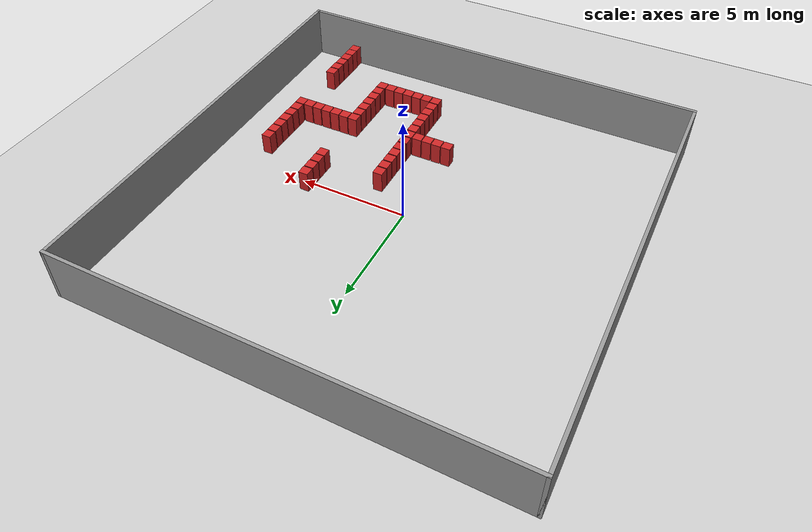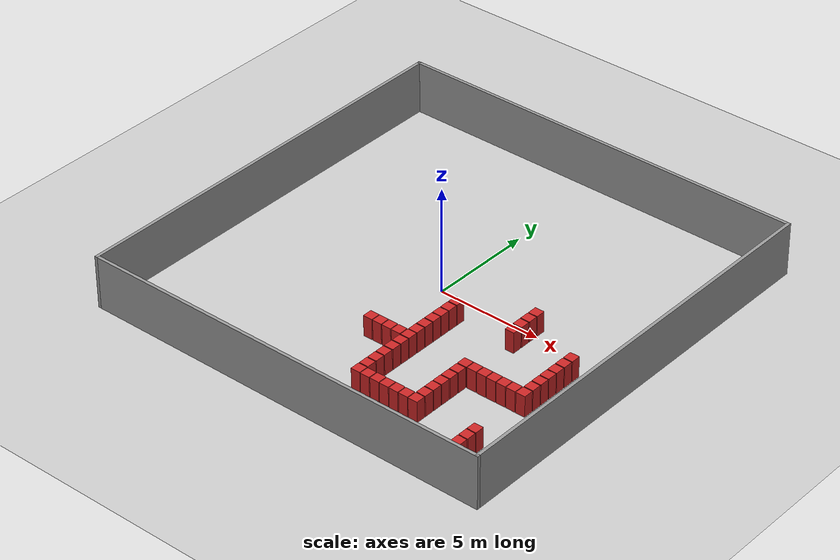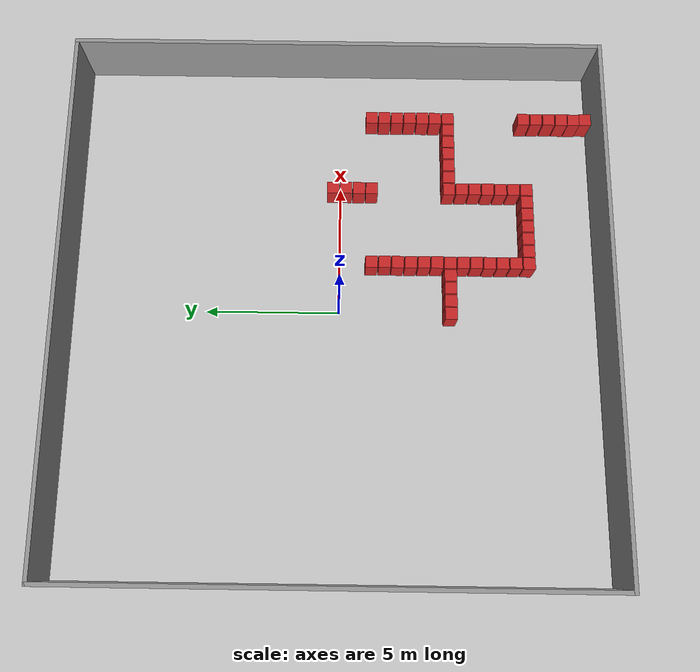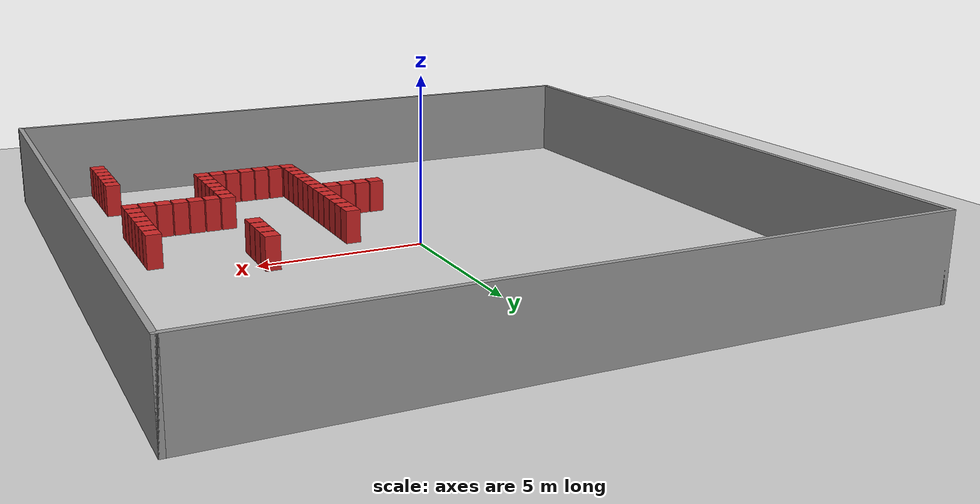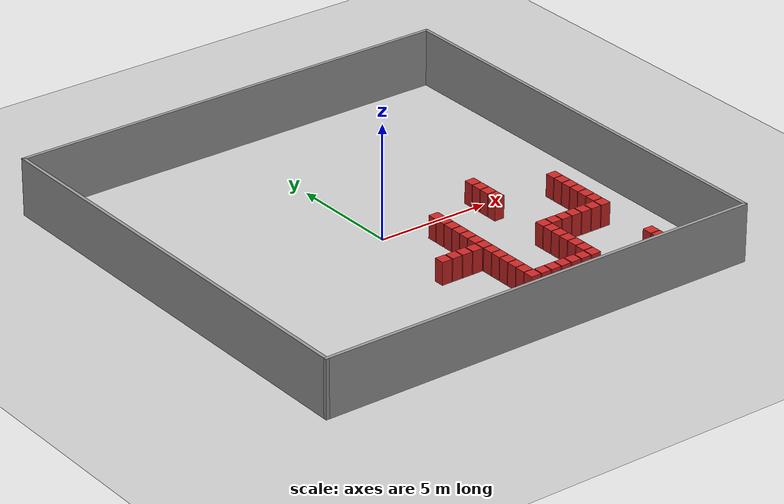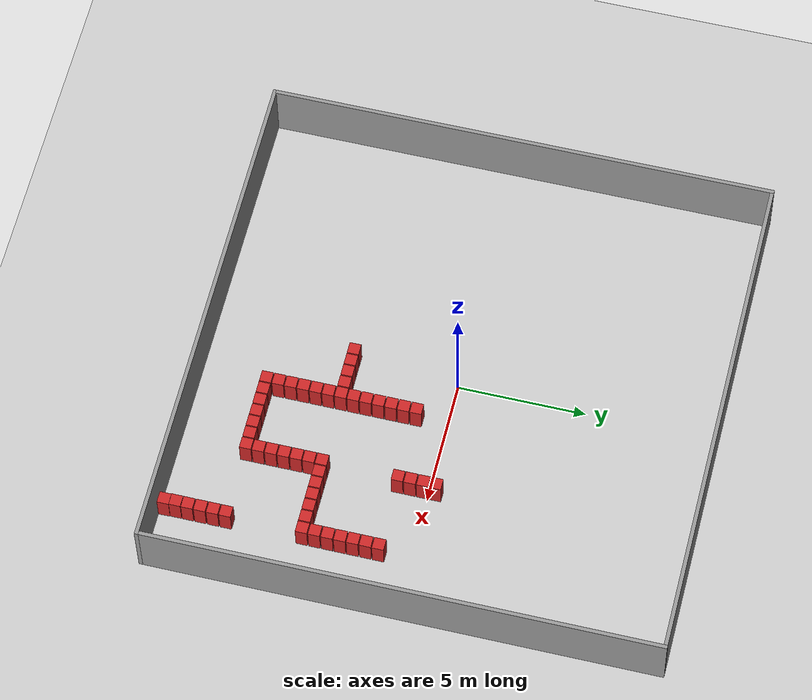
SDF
<sdf version="1.6">
 <world name="default">
  <model name="ground_plane">
   <static>1</static>
   <link name="link">
    <collision name="collision">
     <geometry><plane><normal>0 0 1</normal><size>100 100</size></plane></geometry>
     <surface><friction><ode><mu>100</mu><mu2>50</mu2></ode></friction></surface>
    </collision>
    <visual name="visual">
     <cast_shadows>0</cast_shadows>
     <geometry><plane><normal>0 0 1</normal><size>100 100</size></plane></geometry>
     <material>
      <script><uri>file://media/materials/scripts/gazebo.material</uri><name>Gazebo/Grey</name></script>
     </material>
    </visual>
   </link>
  </model>
  <model name="NamedLocations"><static>1</static><link name="DefaultStart"/></model>
  <model name="20x20_walls">
   <pose>0.044518 0.1761 0 0 -0 0</pose>
   <link name="Wall_1">
    <collision name="Wall_1_Collision">
     <geometry><box><size>20 0.15 2.5</size></box></geometry>
     <pose>0 0 1.25 0 -0 0</pose>
    </collision>
    <visual name="Wall_1_Visual">
     <pose>0 0 1.25 0 -0 0</pose>
     <geometry><box><size>20 0.15 2.5</size></box></geometry>
     <material>
      <script><uri>file://media/materials/scripts/gazebo.material</uri><name>Gazebo/Grey</name></script>
      <ambient>0.976471 0.992157 1 1</ambient>
     </material>
     <meta><layer>0</layer></meta>
    </visual>
    <pose>0 9.925 0 0 -0 0</pose>
   </link>
   <link name="Wall_3">
    <collision name="Wall_3_Collision">
     <geometry><box><size>20 0.15 2.5</size></box></geometry>
     <pose>0 0 1.25 0 -0 0</pose>
    </collision>
    <visual name="Wall_3_Visual">
     <pose>0 0 1.25 0 -0 0</pose>
     <geometry><box><size>20 0.15 2.5</size></box></geometry>
     <material>
      <script><uri>file://media/materials/scripts/gazebo.material</uri><name>Gazebo/Grey</name></script>
      <ambient>0.976471 0.992157 1 1</ambient>
     </material>
     <meta><layer>0</layer></meta>
    </visual>
    <pose>9.925 0 0 0 0 -1.5708</pose>
   </link>
   <link name="Wall_4">
    <collision name="Wall_4_Collision">
     <geometry><box><size>20 0.15 2.5</size></box></geometry>
     <pose>0 0 1.25 0 -0 0</pose>
    </collision>
    <visual name="Wall_4_Visual">
     <pose>0 0 1.25 0 -0 0</pose>
     <geometry><box><size>20 0.15 2.5</size></box></geometry>
     <material>
      <script><uri>file://media/materials/scripts/gazebo.material</uri><name>Gazebo/Grey</name></script>
      <ambient>0.976471 0.992157 1 1</ambient>
     </material>
     <meta><layer>0</layer></meta>
    </visual>
    <pose>0 -9.925 0 0 -0 3.14159</pose>
   </link>
   <link name="Wall_5">
    <collision name="Wall_5_Collision">
     <geometry><box><size>20 0.15 2.5</size></box></geometry>
     <pose>0 0 1.25 0 -0 0</pose>
    </collision>
    <visual name="Wall_5_Visual">
     <pose>0 0 1.25 0 -0 0</pose>
     <geometry><box><size>20 0.15 2.5</size></box></geometry>
     <material>
      <script><uri>file://media/materials/scripts/gazebo.material</uri><name>Gazebo/Grey</name></script>
      <ambient>0.976471 0.992157 1 1</ambient>
     </material>
     <meta><layer>0</layer></meta>
    </visual>
    <pose>-9.925 0 0 0 -0 1.5708</pose>
   </link>
   <static>1</static>
  </model>
  <model name="box_obstacle109">
   <static>0</static>
   <link name="box_obstacle109">
    <pose>0 0 0.1 0 -0 0</pose>
    <inertial>
     <mass>100</mass>
     <inertia>
      <ixx>0.166667</ixx>
      <ixy>0</ixy>
      <ixz>0</ixz>
      <iyy>0.166667</iyy>
      <iyz>0</iyz>
      <izz>0.166667</izz>
     </inertia>
    </inertial>
    <collision name="collision"><geometry><box><size>0.45 0.45 1</size></box></geometry></collision>
    <visual name="visual">
     <geometry><box><size>0.45 0.45 1</size></box></geometry>
     <material>
      <script><name>Gazebo/Red</name><uri>file://media/materials/scripts/gazebo.material</uri></script>
     </material>
    </visual>
   </link>
   <pose>-0.200508 -4.12124 0.4 0 5e-06 0.002247</pose>
  </model>
  <model name="box_obstacle111">
   <static>0</static>
   <link name="box_obstacle111">
    <pose>0 0 0.1 0 -0 0</pose>
    <inertial>
     <mass>100</mass>
     <inertia>
      <ixx>0.166667</ixx>
      <ixy>0</ixy>
      <ixz>0</ixz>
      <iyy>0.166667</iyy>
      <iyz>0</iyz>
      <izz>0.166667</izz>
     </inertia>
    </inertial>
    <collision name="collision"><geometry><box><size>0.45 0.45 1</size></box></geometry></collision>
    <visual name="visual">
     <geometry><box><size>0.45 0.45 1</size></box></geometry>
     <material>
      <script><name>Gazebo/Red</name><uri>file://media/materials/scripts/gazebo.material</uri></script>
     </material>
    </visual>
   </link>
   <pose>0.289492 -4.12124 0.4 0 5e-06 0.002247</pose>
  </model>
  <model name="box_obstacle113">
   <static>0</static>
   <link name="box_obstacle113">
    <pose>0 0 0.1 0 -0 0</pose>
    <inertial>
     <mass>100</mass>
     <inertia>
      <ixx>0.166667</ixx>
      <ixy>0</ixy>
      <ixz>0</ixz>
      <iyy>0.166667</iyy>
      <iyz>0</iyz>
      <izz>0.166667</izz>
     </inertia>
    </inertial>
    <collision name="collision"><geometry><box><size>0.45 0.45 1</size></box></geometry></collision>
    <visual name="visual">
     <geometry><box><size>0.45 0.45 1</size></box></geometry>
     <material>
      <script><name>Gazebo/Red</name><uri>file://media/materials/scripts/gazebo.material</uri></script>
     </material>
    </visual>
   </link>
   <pose>0.779492 -4.12124 0.4 0 5e-06 0.002247</pose>
  </model>
  <model name="box_obstacle115">
   <static>0</static>
   <link name="box_obstacle115">
    <pose>0 0 0.1 0 -0 0</pose>
    <inertial>
     <mass>100</mass>
     <inertia>
      <ixx>0.166667</ixx>
      <ixy>0</ixy>
      <ixz>0</ixz>
      <iyy>0.166667</iyy>
      <iyz>0</iyz>
      <izz>0.166667</izz>
     </inertia>
    </inertial>
    <collision name="collision"><geometry><box><size>0.45 0.45 1</size></box></geometry></collision>
    <visual name="visual">
     <geometry><box><size>0.45 0.45 1</size></box></geometry>
     <material>
      <script><name>Gazebo/Red</name><uri>file://media/materials/scripts/gazebo.material</uri></script>
     </material>
    </visual>
   </link>
   <pose>1.26949 -4.12124 0.4 0 5e-06 0.002247</pose>
  </model>
  <model name="box_obstacle117">
   <static>0</static>
   <link name="box_obstacle117">
    <pose>0 0 0.1 0 -0 0</pose>
    <inertial>
     <mass>100</mass>
     <inertia>
      <ixx>0.166667</ixx>
      <ixy>0</ixy>
      <ixz>0</ixz>
      <iyy>0.166667</iyy>
      <iyz>0</iyz>
      <izz>0.166667</izz>
     </inertia>
    </inertial>
    <collision name="collision"><geometry><box><size>0.45 0.45 1</size></box></geometry></collision>
    <visual name="visual">
     <geometry><box><size>0.45 0.45 1</size></box></geometry>
     <material>
      <script><name>Gazebo/Red</name><uri>file://media/materials/scripts/gazebo.material</uri></script>
     </material>
    </visual>
   </link>
   <pose>1.75949 -7.06124 0.4 0 5e-06 0.002247</pose>
  </model>
  <model name="box_obstacle118">
   <static>0</static>
   <link name="box_obstacle118">
    <pose>0 0 0.1 0 -0 0</pose>
    <inertial>
     <mass>100</mass>
     <inertia>
      <ixx>0.166667</ixx>
      <ixy>0</ixy>
      <ixz>0</ixz>
      <iyy>0.166667</iyy>
      <iyz>0</iyz>
      <izz>0.166667</izz>
     </inertia>
    </inertial>
    <collision name="collision"><geometry><box><size>0.45 0.45 1</size></box></geometry></collision>
    <visual name="visual">
     <geometry><box><size>0.45 0.45 1</size></box></geometry>
     <material>
      <script><name>Gazebo/Red</name><uri>file://media/materials/scripts/gazebo.material</uri></script>
     </material>
    </visual>
   </link>
   <pose>1.75949 -6.57124 0.4 0 5e-06 0.002247</pose>
  </model>
  <model name="box_obstacle119">
   <static>0</static>
   <link name="box_obstacle119">
    <pose>0 0 0.1 0 -0 0</pose>
    <inertial>
     <mass>100</mass>
     <inertia>
      <ixx>0.166667</ixx>
      <ixy>0</ixy>
      <ixz>0</ixz>
      <iyy>0.166667</iyy>
      <iyz>0</iyz>
      <izz>0.166667</izz>
     </inertia>
    </inertial>
    <collision name="collision"><geometry><box><size>0.45 0.45 1</size></box></geometry></collision>
    <visual name="visual">
     <geometry><box><size>0.45 0.45 1</size></box></geometry>
     <material>
      <script><name>Gazebo/Red</name><uri>file://media/materials/scripts/gazebo.material</uri></script>
     </material>
    </visual>
   </link>
   <pose>1.75949 -6.08124 0.4 0 5e-06 0.002247</pose>
  </model>
  <model name="box_obstacle120">
   <static>0</static>
   <link name="box_obstacle120">
    <pose>0 0 0.1 0 -0 0</pose>
    <inertial>
     <mass>100</mass>
     <inertia>
      <ixx>0.166667</ixx>
      <ixy>0</ixy>
      <ixz>0</ixz>
      <iyy>0.166667</iyy>
      <iyz>0</iyz>
      <izz>0.166667</izz>
     </inertia>
    </inertial>
    <collision name="collision"><geometry><box><size>0.45 0.45 1</size></box></geometry></collision>
    <visual name="visual">
     <geometry><box><size>0.45 0.45 1</size></box></geometry>
     <material>
      <script><name>Gazebo/Red</name><uri>file://media/materials/scripts/gazebo.material</uri></script>
     </material>
    </visual>
   </link>
   <pose>1.75949 -5.59124 0.4 0 5e-06 0.002247</pose>
  </model>
  <model name="box_obstacle121">
   <static>0</static>
   <link name="box_obstacle121">
    <pose>0 0 0.1 0 -0 0</pose>
    <inertial>
     <mass>100</mass>
     <inertia>
      <ixx>0.166667</ixx>
      <ixy>0</ixy>
      <ixz>0</ixz>
      <iyy>0.166667</iyy>
      <iyz>0</iyz>
      <izz>0.166667</izz>
     </inertia>
    </inertial>
    <collision name="collision"><geometry><box><size>0.45 0.45 1</size></box></geometry></collision>
    <visual name="visual">
     <geometry><box><size>0.45 0.45 1</size></box></geometry>
     <material>
      <script><name>Gazebo/Red</name><uri>file://media/materials/scripts/gazebo.material</uri></script>
     </material>
    </visual>
   </link>
   <pose>1.75949 -5.10124 0.4 0 5e-06 0.002247</pose>
  </model>
  <model name="box_obstacle122">
   <static>0</static>
   <link name="box_obstacle122">
    <pose>0 0 0.1 0 -0 0</pose>
    <inertial>
     <mass>100</mass>
     <inertia>
      <ixx>0.166667</ixx>
      <ixy>0</ixy>
      <ixz>0</ixz>
      <iyy>0.166667</iyy>
      <iyz>0</iyz>
      <izz>0.166667</izz>
     </inertia>
    </inertial>
    <collision name="collision"><geometry><box><size>0.45 0.45 1</size></box></geometry></collision>
    <visual name="visual">
     <geometry><box><size>0.45 0.45 1</size></box></geometry>
     <material>
      <script><name>Gazebo/Red</name><uri>file://media/materials/scripts/gazebo.material</uri></script>
     </material>
    </visual>
   </link>
   <pose>1.75949 -4.61124 0.4 0 5e-06 0.002247</pose>
  </model>
  <model name="box_obstacle123">
   <static>0</static>
   <link name="box_obstacle123">
    <pose>0 0 0.1 0 -0 0</pose>
    <inertial>
     <mass>100</mass>
     <inertia>
      <ixx>0.166667</ixx>
      <ixy>0</ixy>
      <ixz>0</ixz>
      <iyy>0.166667</iyy>
      <iyz>0</iyz>
      <izz>0.166667</izz>
     </inertia>
    </inertial>
    <collision name="collision"><geometry><box><size>0.45 0.45 1</size></box></geometry></collision>
    <visual name="visual">
     <geometry><box><size>0.45 0.45 1</size></box></geometry>
     <material>
      <script><name>Gazebo/Red</name><uri>file://media/materials/scripts/gazebo.material</uri></script>
     </material>
    </visual>
   </link>
   <pose>1.75949 -4.12124 0.4 0 5e-06 0.002247</pose>
  </model>
  <model name="box_obstacle124">
   <static>0</static>
   <link name="box_obstacle124">
    <pose>0 0 0.1 0 -0 0</pose>
    <inertial>
     <mass>100</mass>
     <inertia>
      <ixx>0.166667</ixx>
      <ixy>0</ixy>
      <ixz>0</ixz>
      <iyy>0.166667</iyy>
      <iyz>0</iyz>
      <izz>0.166667</izz>
     </inertia>
    </inertial>
    <collision name="collision"><geometry><box><size>0.45 0.45 1</size></box></geometry></collision>
    <visual name="visual">
     <geometry><box><size>0.45 0.45 1</size></box></geometry>
     <material>
      <script><name>Gazebo/Red</name><uri>file://media/materials/scripts/gazebo.material</uri></script>
     </material>
    </visual>
   </link>
   <pose>1.75949 -3.63124 0.4 0 5e-06 0.002247</pose>
  </model>
  <model name="box_obstacle125">
   <static>0</static>
   <link name="box_obstacle125">
    <pose>0 0 0.1 0 -0 0</pose>
    <inertial>
     <mass>100</mass>
     <inertia>
      <ixx>0.166667</ixx>
      <ixy>0</ixy>
      <ixz>0</ixz>
      <iyy>0.166667</iyy>
      <iyz>0</iyz>
      <izz>0.166667</izz>
     </inertia>
    </inertial>
    <collision name="collision"><geometry><box><size>0.45 0.45 1</size></box></geometry></collision>
    <visual name="visual">
     <geometry><box><size>0.45 0.45 1</size></box></geometry>
     <material>
      <script><name>Gazebo/Red</name><uri>file://media/materials/scripts/gazebo.material</uri></script>
     </material>
    </visual>
   </link>
   <pose>1.75949 -3.14124 0.4 0 5e-06 0.002247</pose>
  </model>
  <model name="box_obstacle126">
   <static>0</static>
   <link name="box_obstacle126">
    <pose>0 0 0.1 0 -0 0</pose>
    <inertial>
     <mass>100</mass>
     <inertia>
      <ixx>0.166667</ixx>
      <ixy>0</ixy>
      <ixz>0</ixz>
      <iyy>0.166667</iyy>
      <iyz>0</iyz>
      <izz>0.166667</izz>
     </inertia>
    </inertial>
    <collision name="collision"><geometry><box><size>0.45 0.45 1</size></box></geometry></collision>
    <visual name="visual">
     <geometry><box><size>0.45 0.45 1</size></box></geometry>
     <material>
      <script><name>Gazebo/Red</name><uri>file://media/materials/scripts/gazebo.material</uri></script>
     </material>
    </visual>
   </link>
   <pose>1.75949 -2.65124 0.4 0 5e-06 0.002247</pose>
  </model>
  <model name="box_obstacle127">
   <static>0</static>
   <link name="box_obstacle127">
    <pose>0 0 0.1 0 -0 0</pose>
    <inertial>
     <mass>100</mass>
     <inertia>
      <ixx>0.166667</ixx>
      <ixy>0</ixy>
      <ixz>0</ixz>
      <iyy>0.166667</iyy>
      <iyz>0</iyz>
      <izz>0.166667</izz>
     </inertia>
    </inertial>
    <collision name="collision"><geometry><box><size>0.45 0.45 1</size></box></geometry></collision>
    <visual name="visual">
     <geometry><box><size>0.45 0.45 1</size></box></geometry>
     <material>
      <script><name>Gazebo/Red</name><uri>file://media/materials/scripts/gazebo.material</uri></script>
     </material>
    </visual>
   </link>
   <pose>1.75949 -2.16124 0.4 0 5e-06 0.002247</pose>
  </model>
  <model name="box_obstacle128">
   <static>0</static>
   <link name="box_obstacle128">
    <pose>0 0 0.1 0 -0 0</pose>
    <inertial>
     <mass>100</mass>
     <inertia>
      <ixx>0.166667</ixx>
      <ixy>0</ixy>
      <ixz>0</ixz>
      <iyy>0.166667</iyy>
      <iyz>0</iyz>
      <izz>0.166667</izz>
     </inertia>
    </inertial>
    <collision name="collision"><geometry><box><size>0.45 0.45 1</size></box></geometry></collision>
    <visual name="visual">
     <geometry><box><size>0.45 0.45 1</size></box></geometry>
     <material>
      <script><name>Gazebo/Red</name><uri>file://media/materials/scripts/gazebo.material</uri></script>
     </material>
    </visual>
   </link>
   <pose>1.75949 -1.67124 0.4 0 5e-06 0.002247</pose>
  </model>
  <model name="box_obstacle129">
   <static>0</static>
   <link name="box_obstacle129">
    <pose>0 0 0.1 0 -0 0</pose>
    <inertial>
     <mass>100</mass>
     <inertia>
      <ixx>0.166667</ixx>
      <ixy>0</ixy>
      <ixz>0</ixz>
      <iyy>0.166667</iyy>
      <iyz>0</iyz>
      <izz>0.166667</izz>
     </inertia>
    </inertial>
    <collision name="collision"><geometry><box><size>0.45 0.45 1</size></box></geometry></collision>
    <visual name="visual">
     <geometry><box><size>0.45 0.45 1</size></box></geometry>
     <material>
      <script><name>Gazebo/Red</name><uri>file://media/materials/scripts/gazebo.material</uri></script>
     </material>
    </visual>
   </link>
   <pose>1.75949 -1.18124 0.4 0 5e-06 0.002247</pose>
  </model>
  <model name="box_obstacle133">
   <static>0</static>
   <link name="box_obstacle133">
    <pose>0 0 0.1 0 -0 0</pose>
    <inertial>
     <mass>100</mass>
     <inertia>
      <ixx>0.166667</ixx>
      <ixy>0</ixy>
      <ixz>0</ixz>
      <iyy>0.166667</iyy>
      <iyz>0</iyz>
      <izz>0.166667</izz>
     </inertia>
    </inertial>
    <collision name="collision"><geometry><box><size>0.45 0.45 1</size></box></geometry></collision>
    <visual name="visual">
     <geometry><box><size>0.45 0.45 1</size></box></geometry>
     <material>
      <script><name>Gazebo/Red</name><uri>file://media/materials/scripts/gazebo.material</uri></script>
     </material>
    </visual>
   </link>
   <pose>2.24949 -7.06124 0.4 0 5e-06 0.002247</pose>
  </model>
  <model name="box_obstacle136">
   <static>0</static>
   <link name="box_obstacle136">
    <pose>0 0 0.1 0 -0 0</pose>
    <inertial>
     <mass>100</mass>
     <inertia>
      <ixx>0.166667</ixx>
      <ixy>0</ixy>
      <ixz>0</ixz>
      <iyy>0.166667</iyy>
      <iyz>0</iyz>
      <izz>0.166667</izz>
     </inertia>
    </inertial>
    <collision name="collision"><geometry><box><size>0.45 0.45 1</size></box></geometry></collision>
    <visual name="visual">
     <geometry><box><size>0.45 0.45 1</size></box></geometry>
     <material>
      <script><name>Gazebo/Red</name><uri>file://media/materials/scripts/gazebo.material</uri></script>
     </material>
    </visual>
   </link>
   <pose>2.73949 -7.06124 0.4 0 5e-06 0.002247</pose>
  </model>
  <model name="box_obstacle139">
   <static>0</static>
   <link name="box_obstacle139">
    <pose>0 0 0.1 0 -0 0</pose>
    <inertial>
     <mass>100</mass>
     <inertia>
      <ixx>0.166667</ixx>
      <ixy>0</ixy>
      <ixz>0</ixz>
      <iyy>0.166667</iyy>
      <iyz>0</iyz>
      <izz>0.166667</izz>
     </inertia>
    </inertial>
    <collision name="collision"><geometry><box><size>0.45 0.45 1</size></box></geometry></collision>
    <visual name="visual">
     <geometry><box><size>0.45 0.45 1</size></box></geometry>
     <material>
      <script><name>Gazebo/Red</name><uri>file://media/materials/scripts/gazebo.material</uri></script>
     </material>
    </visual>
   </link>
   <pose>3.22949 -7.06124 0.4 0 5e-06 0.002247</pose>
  </model>
  <model name="box_obstacle142">
   <static>0</static>
   <link name="box_obstacle142">
    <pose>0 0 0.1 0 -0 0</pose>
    <inertial>
     <mass>100</mass>
     <inertia>
      <ixx>0.166667</ixx>
      <ixy>0</ixy>
      <ixz>0</ixz>
      <iyy>0.166667</iyy>
      <iyz>0</iyz>
      <izz>0.166667</izz>
     </inertia>
    </inertial>
    <collision name="collision"><geometry><box><size>0.45 0.45 1</size></box></geometry></collision>
    <visual name="visual">
     <geometry><box><size>0.45 0.45 1</size></box></geometry>
     <material>
      <script><name>Gazebo/Red</name><uri>file://media/materials/scripts/gazebo.material</uri></script>
     </material>
    </visual>
   </link>
   <pose>3.71949 -7.06124 0.4 0 5e-06 0.002247</pose>
  </model>
  <model name="box_obstacle145">
   <static>0</static>
   <link name="box_obstacle145">
    <pose>0 0 0.1 0 -0 0</pose>
    <inertial>
     <mass>100</mass>
     <inertia>
      <ixx>0.166667</ixx>
      <ixy>0</ixy>
      <ixz>0</ixz>
      <iyy>0.166667</iyy>
      <iyz>0</iyz>
      <izz>0.166667</izz>
     </inertia>
    </inertial>
    <collision name="collision"><geometry><box><size>0.45 0.45 1</size></box></geometry></collision>
    <visual name="visual">
     <geometry><box><size>0.45 0.45 1</size></box></geometry>
     <material>
      <script><name>Gazebo/Red</name><uri>file://media/materials/scripts/gazebo.material</uri></script>
     </material>
    </visual>
   </link>
   <pose>4.20949 -7.06124 0.4 0 5e-06 0.002247</pose>
  </model>
  <model name="box_obstacle148">
   <static>0</static>
   <link name="box_obstacle148">
    <pose>0 0 0.1 0 -0 0</pose>
    <inertial>
     <mass>100</mass>
     <inertia>
      <ixx>0.166667</ixx>
      <ixy>0</ixy>
      <ixz>0</ixz>
      <iyy>0.166667</iyy>
      <iyz>0</iyz>
      <izz>0.166667</izz>
     </inertia>
    </inertial>
    <collision name="collision"><geometry><box><size>0.45 0.45 1</size></box></geometry></collision>
    <visual name="visual">
     <geometry><box><size>0.45 0.45 1</size></box></geometry>
     <material>
      <script><name>Gazebo/Red</name><uri>file://media/materials/scripts/gazebo.material</uri></script>
     </material>
    </visual>
   </link>
   <pose>4.69949 -7.06124 0.4 0 5e-06 0.002247</pose>
  </model>
  <model name="box_obstacle149">
   <static>0</static>
   <link name="box_obstacle149">
    <pose>0 0 0.1 0 -0 0</pose>
    <inertial>
     <mass>100</mass>
     <inertia>
      <ixx>0.166667</ixx>
      <ixy>0</ixy>
      <ixz>0</ixz>
      <iyy>0.166667</iyy>
      <iyz>0</iyz>
      <izz>0.166667</izz>
     </inertia>
    </inertial>
    <collision name="collision"><geometry><box><size>0.45 0.45 1</size></box></geometry></collision>
    <visual name="visual">
     <geometry><box><size>0.45 0.45 1</size></box></geometry>
     <material>
      <script><name>Gazebo/Red</name><uri>file://media/materials/scripts/gazebo.material</uri></script>
     </material>
    </visual>
   </link>
   <pose>4.69949 -6.57124 0.4 0 5e-06 0.002247</pose>
  </model>
  <model name="box_obstacle150">
   <static>0</static>
   <link name="box_obstacle150">
    <pose>0 0 0.1 0 -0 0</pose>
    <inertial>
     <mass>100</mass>
     <inertia>
      <ixx>0.166667</ixx>
      <ixy>0</ixy>
      <ixz>0</ixz>
      <iyy>0.166667</iyy>
      <iyz>0</iyz>
      <izz>0.166667</izz>
     </inertia>
    </inertial>
    <collision name="collision"><geometry><box><size>0.45 0.45 1</size></box></geometry></collision>
    <visual name="visual">
     <geometry><box><size>0.45 0.45 1</size></box></geometry>
     <material>
      <script><name>Gazebo/Red</name><uri>file://media/materials/scripts/gazebo.material</uri></script>
     </material>
    </visual>
   </link>
   <pose>4.69949 -6.08124 0.4 0 5e-06 0.002247</pose>
  </model>
  <model name="box_obstacle151">
   <static>0</static>
   <link name="box_obstacle151">
    <pose>0 0 0.1 0 -0 0</pose>
    <inertial>
     <mass>100</mass>
     <inertia>
      <ixx>0.166667</ixx>
      <ixy>0</ixy>
      <ixz>0</ixz>
      <iyy>0.166667</iyy>
      <iyz>0</iyz>
      <izz>0.166667</izz>
     </inertia>
    </inertial>
    <collision name="collision"><geometry><box><size>0.45 0.45 1</size></box></geometry></collision>
    <visual name="visual">
     <geometry><box><size>0.45 0.45 1</size></box></geometry>
     <material>
      <script><name>Gazebo/Red</name><uri>file://media/materials/scripts/gazebo.material</uri></script>
     </material>
    </visual>
   </link>
   <pose>4.69949 -5.59124 0.4 0 5e-06 0.002247</pose>
  </model>
  <model name="box_obstacle152">
   <static>0</static>
   <link name="box_obstacle152">
    <pose>0 0 0.1 0 -0 0</pose>
    <inertial>
     <mass>100</mass>
     <inertia>
      <ixx>0.166667</ixx>
      <ixy>0</ixy>
      <ixz>0</ixz>
      <iyy>0.166667</iyy>
      <iyz>0</iyz>
      <izz>0.166667</izz>
     </inertia>
    </inertial>
    <collision name="collision"><geometry><box><size>0.45 0.45 1</size></box></geometry></collision>
    <visual name="visual">
     <geometry><box><size>0.45 0.45 1</size></box></geometry>
     <material>
      <script><name>Gazebo/Red</name><uri>file://media/materials/scripts/gazebo.material</uri></script>
     </material>
    </visual>
   </link>
   <pose>4.69949 -5.10124 0.4 0 5e-06 0.002247</pose>
  </model>
  <model name="box_obstacle153">
   <static>0</static>
   <link name="box_obstacle153">
    <pose>0 0 0.1 0 -0 0</pose>
    <inertial>
     <mass>100</mass>
     <inertia>
      <ixx>0.166667</ixx>
      <ixy>0</ixy>
      <ixz>0</ixz>
      <iyy>0.166667</iyy>
      <iyz>0</iyz>
      <izz>0.166667</izz>
     </inertia>
    </inertial>
    <collision name="collision"><geometry><box><size>0.45 0.45 1</size></box></geometry></collision>
    <visual name="visual">
     <geometry><box><size>0.45 0.45 1</size></box></geometry>
     <material>
      <script><name>Gazebo/Red</name><uri>file://media/materials/scripts/gazebo.material</uri></script>
     </material>
    </visual>
   </link>
   <pose>4.69949 -4.61124 0.4 0 5e-06 0.002247</pose>
  </model>
  <model name="box_obstacle154">
   <static>0</static>
   <link name="box_obstacle154">
    <pose>0 0 0.1 0 -0 0</pose>
    <inertial>
     <mass>100</mass>
     <inertia>
      <ixx>0.166667</ixx>
      <ixy>0</ixy>
      <ixz>0</ixz>
      <iyy>0.166667</iyy>
      <iyz>0</iyz>
      <izz>0.166667</izz>
     </inertia>
    </inertial>
    <collision name="collision"><geometry><box><size>0.45 0.45 1</size></box></geometry></collision>
    <visual name="visual">
     <geometry><box><size>0.45 0.45 1</size></box></geometry>
     <material>
      <script><name>Gazebo/Red</name><uri>file://media/materials/scripts/gazebo.material</uri></script>
     </material>
    </visual>
   </link>
   <pose>4.69949 -4.12124 0.4 0 5e-06 0.002247</pose>
  </model>
  <model name="box_obstacle155">
   <static>0</static>
   <link name="box_obstacle155">
    <pose>0 0 0.1 0 -0 0</pose>
    <inertial>
     <mass>100</mass>
     <inertia>
      <ixx>0.166667</ixx>
      <ixy>0</ixy>
      <ixz>0</ixz>
      <iyy>0.166667</iyy>
      <iyz>0</iyz>
      <izz>0.166667</izz>
     </inertia>
    </inertial>
    <collision name="collision"><geometry><box><size>0.45 0.45 1</size></box></geometry></collision>
    <visual name="visual">
     <geometry><box><size>0.45 0.45 1</size></box></geometry>
     <material>
      <script><name>Gazebo/Red</name><uri>file://media/materials/scripts/gazebo.material</uri></script>
     </material>
    </visual>
   </link>
   <pose>4.69949 -1.18124 0.4 0 5e-06 0.002247</pose>
  </model>
  <model name="box_obstacle156">
   <static>0</static>
   <link name="box_obstacle156">
    <pose>0 0 0.1 0 -0 0</pose>
    <inertial>
     <mass>100</mass>
     <inertia>
      <ixx>0.166667</ixx>
      <ixy>0</ixy>
      <ixz>0</ixz>
      <iyy>0.166667</iyy>
      <iyz>0</iyz>
      <izz>0.166667</izz>
     </inertia>
    </inertial>
    <collision name="collision"><geometry><box><size>0.45 0.45 1</size></box></geometry></collision>
    <visual name="visual">
     <geometry><box><size>0.45 0.45 1</size></box></geometry>
     <material>
      <script><name>Gazebo/Red</name><uri>file://media/materials/scripts/gazebo.material</uri></script>
     </material>
    </visual>
   </link>
   <pose>4.69949 -0.691242 0.4 0 5e-06 0.002247</pose>
  </model>
  <model name="box_obstacle157">
   <static>0</static>
   <link name="box_obstacle157">
    <pose>0 0 0.1 0 -0 0</pose>
    <inertial>
     <mass>100</mass>
     <inertia>
      <ixx>0.166667</ixx>
      <ixy>0</ixy>
      <ixz>0</ixz>
      <iyy>0.166667</iyy>
      <iyz>0</iyz>
      <izz>0.166667</izz>
     </inertia>
    </inertial>
    <collision name="collision"><geometry><box><size>0.45 0.45 1</size></box></geometry></collision>
    <visual name="visual">
     <geometry><box><size>0.45 0.45 1</size></box></geometry>
     <material>
      <script><name>Gazebo/Red</name><uri>file://media/materials/scripts/gazebo.material</uri></script>
     </material>
    </visual>
   </link>
   <pose>4.69949 -0.201242 0.4 0 5e-06 0.002247</pose>
  </model>
  <model name="box_obstacle158">
   <static>0</static>
   <link name="box_obstacle158">
    <pose>0 0 0.1 0 -0 0</pose>
    <inertial>
     <mass>100</mass>
     <inertia>
      <ixx>0.166667</ixx>
      <ixy>0</ixy>
      <ixz>0</ixz>
      <iyy>0.166667</iyy>
      <iyz>0</iyz>
      <izz>0.166667</izz>
     </inertia>
    </inertial>
    <collision name="collision"><geometry><box><size>0.45 0.45 1</size></box></geometry></collision>
    <visual name="visual">
     <geometry><box><size>0.45 0.45 1</size></box></geometry>
     <material>
      <script><name>Gazebo/Red</name><uri>file://media/materials/scripts/gazebo.material</uri></script>
     </material>
    </visual>
   </link>
   <pose>4.69949 0.288758 0.4 0 5e-06 0.002247</pose>
  </model>
  <model name="box_obstacle174">
   <static>0</static>
   <link name="box_obstacle174">
    <pose>0 0 0.1 0 -0 0</pose>
    <inertial>
     <mass>100</mass>
     <inertia>
      <ixx>0.166667</ixx>
      <ixy>0</ixy>
      <ixz>0</ixz>
      <iyy>0.166667</iyy>
      <iyz>0</iyz>
      <izz>0.166667</izz>
     </inertia>
    </inertial>
    <collision name="collision"><geometry><box><size>0.45 0.45 1</size></box></geometry></collision>
    <visual name="visual">
     <geometry><box><size>0.45 0.45 1</size></box></geometry>
     <material>
      <script><name>Gazebo/Red</name><uri>file://media/materials/scripts/gazebo.material</uri></script>
     </material>
    </visual>
   </link>
   <pose>5.18949 -4.12124 0.4 0 5e-06 0.002247</pose>
  </model>
  <model name="box_obstacle177">
   <static>0</static>
   <link name="box_obstacle177">
    <pose>0 0 0.1 0 -0 0</pose>
    <inertial>
     <mass>100</mass>
     <inertia>
      <ixx>0.166667</ixx>
      <ixy>0</ixy>
      <ixz>0</ixz>
      <iyy>0.166667</iyy>
      <iyz>0</iyz>
      <izz>0.166667</izz>
     </inertia>
    </inertial>
    <collision name="collision"><geometry><box><size>0.45 0.45 1</size></box></geometry></collision>
    <visual name="visual">
     <geometry><box><size>0.45 0.45 1</size></box></geometry>
     <material>
      <script><name>Gazebo/Red</name><uri>file://media/materials/scripts/gazebo.material</uri></script>
     </material>
    </visual>
   </link>
   <pose>5.67949 -4.12124 0.4 0 5e-06 0.002247</pose>
  </model>
  <model name="box_obstacle180">
   <static>0</static>
   <link name="box_obstacle180">
    <pose>0 0 0.1 0 -0 0</pose>
    <inertial>
     <mass>100</mass>
     <inertia>
      <ixx>0.166667</ixx>
      <ixy>0</ixy>
      <ixz>0</ixz>
      <iyy>0.166667</iyy>
      <iyz>0</iyz>
      <izz>0.166667</izz>
     </inertia>
    </inertial>
    <collision name="collision"><geometry><box><size>0.45 0.45 1</size></box></geometry></collision>
    <visual name="visual">
     <geometry><box><size>0.45 0.45 1</size></box></geometry>
     <material>
      <script><name>Gazebo/Red</name><uri>file://media/materials/scripts/gazebo.material</uri></script>
     </material>
    </visual>
   </link>
   <pose>6.16949 -4.12124 0.4 0 5e-06 0.002247</pose>
  </model>
  <model name="box_obstacle183">
   <static>0</static>
   <link name="box_obstacle183">
    <pose>0 0 0.1 0 -0 0</pose>
    <inertial>
     <mass>100</mass>
     <inertia>
      <ixx>0.166667</ixx>
      <ixy>0</ixy>
      <ixz>0</ixz>
      <iyy>0.166667</iyy>
      <iyz>0</iyz>
      <izz>0.166667</izz>
     </inertia>
    </inertial>
    <collision name="collision"><geometry><box><size>0.45 0.45 1</size></box></geometry></collision>
    <visual name="visual">
     <geometry><box><size>0.45 0.45 1</size></box></geometry>
     <material>
      <script><name>Gazebo/Red</name><uri>file://media/materials/scripts/gazebo.material</uri></script>
     </material>
    </visual>
   </link>
   <pose>6.65949 -4.12124 0.4 0 5e-06 0.002247</pose>
  </model>
  <model name="box_obstacle186">
   <static>0</static>
   <link name="box_obstacle186">
    <pose>0 0 0.1 0 -0 0</pose>
    <inertial>
     <mass>100</mass>
     <inertia>
      <ixx>0.166667</ixx>
      <ixy>0</ixy>
      <ixz>0</ixz>
      <iyy>0.166667</iyy>
      <iyz>0</iyz>
      <izz>0.166667</izz>
     </inertia>
    </inertial>
    <collision name="collision"><geometry><box><size>0.45 0.45 1</size></box></geometry></collision>
    <visual name="visual">
     <geometry><box><size>0.45 0.45 1</size></box></geometry>
     <material>
      <script><name>Gazebo/Red</name><uri>file://media/materials/scripts/gazebo.material</uri></script>
     </material>
    </visual>
   </link>
   <pose>7.14949 -4.12124 0.4 0 5e-06 0.002247</pose>
  </model>
  <model name="box_obstacle189">
   <static>0</static>
   <link name="box_obstacle189">
    <pose>0 0 0.1 0 -0 0</pose>
    <inertial>
     <mass>100</mass>
     <inertia>
      <ixx>0.166667</ixx>
      <ixy>0</ixy>
      <ixz>0</ixz>
      <iyy>0.166667</iyy>
      <iyz>0</iyz>
      <izz>0.166667</izz>
     </inertia>
    </inertial>
    <collision name="collision"><geometry><box><size>0.45 0.45 1</size></box></geometry></collision>
    <visual name="visual">
     <geometry><box><size>0.45 0.45 1</size></box></geometry>
     <material>
      <script><name>Gazebo/Red</name><uri>file://media/materials/scripts/gazebo.material</uri></script>
     </material>
    </visual>
   </link>
   <pose>7.65269 -9.44868 0.399997 -3e-06 1e-06 -0.000701</pose>
  </model>
  <model name="box_obstacle190">
   <static>0</static>
   <link name="box_obstacle190">
    <pose>0 0 0.1 0 -0 0</pose>
    <inertial>
     <mass>100</mass>
     <inertia>
      <ixx>0.166667</ixx>
      <ixy>0</ixy>
      <ixz>0</ixz>
      <iyy>0.166667</iyy>
      <iyz>0</iyz>
      <izz>0.166667</izz>
     </inertia>
    </inertial>
    <collision name="collision"><geometry><box><size>0.45 0.45 1</size></box></geometry></collision>
    <visual name="visual">
     <geometry><box><size>0.45 0.45 1</size></box></geometry>
     <material>
      <script><name>Gazebo/Red</name><uri>file://media/materials/scripts/gazebo.material</uri></script>
     </material>
    </visual>
   </link>
   <pose>7.63836 -8.99813 0.400001 1e-06 -1.2e-05 0.000327</pose>
  </model>
  <model name="box_obstacle191">
   <static>0</static>
   <link name="box_obstacle191">
    <pose>0 0 0.1 0 -0 0</pose>
    <inertial>
     <mass>100</mass>
     <inertia>
      <ixx>0.166667</ixx>
      <ixy>0</ixy>
      <ixz>0</ixz>
      <iyy>0.166667</iyy>
      <iyz>0</iyz>
      <izz>0.166667</izz>
     </inertia>
    </inertial>
    <collision name="collision"><geometry><box><size>0.45 0.45 1</size></box></geometry></collision>
    <visual name="visual">
     <geometry><box><size>0.45 0.45 1</size></box></geometry>
     <material>
      <script><name>Gazebo/Red</name><uri>file://media/materials/scripts/gazebo.material</uri></script>
     </material>
    </visual>
   </link>
   <pose>7.63949 -8.53124 0.4 0 5e-06 0.002248</pose>
  </model>
  <model name="box_obstacle192">
   <static>0</static>
   <link name="box_obstacle192">
    <pose>0 0 0.1 0 -0 0</pose>
    <inertial>
     <mass>100</mass>
     <inertia>
      <ixx>0.166667</ixx>
      <ixy>0</ixy>
      <ixz>0</ixz>
      <iyy>0.166667</iyy>
      <iyz>0</iyz>
      <izz>0.166667</izz>
     </inertia>
    </inertial>
    <collision name="collision"><geometry><box><size>0.45 0.45 1</size></box></geometry></collision>
    <visual name="visual">
     <geometry><box><size>0.45 0.45 1</size></box></geometry>
     <material>
      <script><name>Gazebo/Red</name><uri>file://media/materials/scripts/gazebo.material</uri></script>
     </material>
    </visual>
   </link>
   <pose>7.63949 -8.04124 0.4 0 5e-06 0.002247</pose>
  </model>
  <model name="box_obstacle193">
   <static>0</static>
   <link name="box_obstacle193">
    <pose>0 0 0.1 0 -0 0</pose>
    <inertial>
     <mass>100</mass>
     <inertia>
      <ixx>0.166667</ixx>
      <ixy>0</ixy>
      <ixz>0</ixz>
      <iyy>0.166667</iyy>
      <iyz>0</iyz>
      <izz>0.166667</izz>
     </inertia>
    </inertial>
    <collision name="collision"><geometry><box><size>0.45 0.45 1</size></box></geometry></collision>
    <visual name="visual">
     <geometry><box><size>0.45 0.45 1</size></box></geometry>
     <material>
      <script><name>Gazebo/Red</name><uri>file://media/materials/scripts/gazebo.material</uri></script>
     </material>
    </visual>
   </link>
   <pose>7.63949 -7.55124 0.4 0 5e-06 0.002247</pose>
  </model>
  <model name="box_obstacle194">
   <static>0</static>
   <link name="box_obstacle194">
    <pose>0 0 0.1 0 -0 0</pose>
    <inertial>
     <mass>100</mass>
     <inertia>
      <ixx>0.166667</ixx>
      <ixy>0</ixy>
      <ixz>0</ixz>
      <iyy>0.166667</iyy>
      <iyz>0</iyz>
      <izz>0.166667</izz>
     </inertia>
    </inertial>
    <collision name="collision"><geometry><box><size>0.45 0.45 1</size></box></geometry></collision>
    <visual name="visual">
     <geometry><box><size>0.45 0.45 1</size></box></geometry>
     <material>
      <script><name>Gazebo/Red</name><uri>file://media/materials/scripts/gazebo.material</uri></script>
     </material>
    </visual>
   </link>
   <pose>7.63949 -7.06124 0.4 0 5e-06 0.002247</pose>
  </model>
  <model name="box_obstacle195">
   <static>0</static>
   <link name="box_obstacle195">
    <pose>0 0 0.1 0 -0 0</pose>
    <inertial>
     <mass>100</mass>
     <inertia>
      <ixx>0.166667</ixx>
      <ixy>0</ixy>
      <ixz>0</ixz>
      <iyy>0.166667</iyy>
      <iyz>0</iyz>
      <izz>0.166667</izz>
     </inertia>
    </inertial>
    <collision name="collision"><geometry><box><size>0.45 0.45 1</size></box></geometry></collision>
    <visual name="visual">
     <geometry><box><size>0.45 0.45 1</size></box></geometry>
     <material>
      <script><name>Gazebo/Red</name><uri>file://media/materials/scripts/gazebo.material</uri></script>
     </material>
    </visual>
   </link>
   <pose>7.63949 -4.12124 0.4 0 5e-06 0.002247</pose>
  </model>
  <model name="box_obstacle196">
   <static>0</static>
   <link name="box_obstacle196">
    <pose>0 0 0.1 0 -0 0</pose>
    <inertial>
     <mass>100</mass>
     <inertia>
      <ixx>0.166667</ixx>
      <ixy>0</ixy>
      <ixz>0</ixz>
      <iyy>0.166667</iyy>
      <iyz>0</iyz>
      <izz>0.166667</izz>
     </inertia>
    </inertial>
    <collision name="collision"><geometry><box><size>0.45 0.45 1</size></box></geometry></collision>
    <visual name="visual">
     <geometry><box><size>0.45 0.45 1</size></box></geometry>
     <material>
      <script><name>Gazebo/Red</name><uri>file://media/materials/scripts/gazebo.material</uri></script>
     </material>
    </visual>
   </link>
   <pose>7.63949 -3.63124 0.4 0 5e-06 0.002247</pose>
  </model>
  <model name="box_obstacle197">
   <static>0</static>
   <link name="box_obstacle197">
    <pose>0 0 0.1 0 -0 0</pose>
    <inertial>
     <mass>100</mass>
     <inertia>
      <ixx>0.166667</ixx>
      <ixy>0</ixy>
      <ixz>0</ixz>
      <iyy>0.166667</iyy>
      <iyz>0</iyz>
      <izz>0.166667</izz>
     </inertia>
    </inertial>
    <collision name="collision"><geometry><box><size>0.45 0.45 1</size></box></geometry></collision>
    <visual name="visual">
     <geometry><box><size>0.45 0.45 1</size></box></geometry>
     <material>
      <script><name>Gazebo/Red</name><uri>file://media/materials/scripts/gazebo.material</uri></script>
     </material>
    </visual>
   </link>
   <pose>7.63949 -3.14124 0.4 0 5e-06 0.002247</pose>
  </model>
  <model name="box_obstacle198">
   <static>0</static>
   <link name="box_obstacle198">
    <pose>0 0 0.1 0 -0 0</pose>
    <inertial>
     <mass>100</mass>
     <inertia>
      <ixx>0.166667</ixx>
      <ixy>0</ixy>
      <ixz>0</ixz>
      <iyy>0.166667</iyy>
      <iyz>0</iyz>
      <izz>0.166667</izz>
     </inertia>
    </inertial>
    <collision name="collision"><geometry><box><size>0.45 0.45 1</size></box></geometry></collision>
    <visual name="visual">
     <geometry><box><size>0.45 0.45 1</size></box></geometry>
     <material>
      <script><name>Gazebo/Red</name><uri>file://media/materials/scripts/gazebo.material</uri></script>
     </material>
    </visual>
   </link>
   <pose>7.63949 -2.65124 0.4 0 5e-06 0.002247</pose>
  </model>
  <model name="box_obstacle199">
   <static>0</static>
   <link name="box_obstacle199">
    <pose>0 0 0.1 0 -0 0</pose>
    <inertial>
     <mass>100</mass>
     <inertia>
      <ixx>0.166667</ixx>
      <ixy>0</ixy>
      <ixz>0</ixz>
      <iyy>0.166667</iyy>
      <iyz>0</iyz>
      <izz>0.166667</izz>
     </inertia>
    </inertial>
    <collision name="collision"><geometry><box><size>0.45 0.45 1</size></box></geometry></collision>
    <visual name="visual">
     <geometry><box><size>0.45 0.45 1</size></box></geometry>
     <material>
      <script><name>Gazebo/Red</name><uri>file://media/materials/scripts/gazebo.material</uri></script>
     </material>
    </visual>
   </link>
   <pose>7.63949 -2.16124 0.4 0 5e-06 0.002247</pose>
  </model>
  <model name="box_obstacle200">
   <static>0</static>
   <link name="box_obstacle200">
    <pose>0 0 0.1 0 -0 0</pose>
    <inertial>
     <mass>100</mass>
     <inertia>
      <ixx>0.166667</ixx>
      <ixy>0</ixy>
      <ixz>0</ixz>
      <iyy>0.166667</iyy>
      <iyz>0</iyz>
      <izz>0.166667</izz>
     </inertia>
    </inertial>
    <collision name="collision"><geometry><box><size>0.45 0.45 1</size></box></geometry></collision>
    <visual name="visual">
     <geometry><box><size>0.45 0.45 1</size></box></geometry>
     <material>
      <script><name>Gazebo/Red</name><uri>file://media/materials/scripts/gazebo.material</uri></script>
     </material>
    </visual>
   </link>
   <pose>7.63949 -1.67124 0.4 0 5e-06 0.002247</pose>
  </model>
  <model name="box_obstacle201">
   <static>0</static>
   <link name="box_obstacle201">
    <pose>0 0 0.1 0 -0 0</pose>
    <inertial>
     <mass>100</mass>
     <inertia>
      <ixx>0.166667</ixx>
      <ixy>0</ixy>
      <ixz>0</ixz>
      <iyy>0.166667</iyy>
      <iyz>0</iyz>
      <izz>0.166667</izz>
     </inertia>
    </inertial>
    <collision name="collision"><geometry><box><size>0.45 0.45 1</size></box></geometry></collision>
    <visual name="visual">
     <geometry><box><size>0.45 0.45 1</size></box></geometry>
     <material>
      <script><name>Gazebo/Red</name><uri>file://media/materials/scripts/gazebo.material</uri></script>
     </material>
    </visual>
   </link>
   <pose>7.63949 -1.18124 0.4 0 5e-06 0.002247</pose>
  </model>
 </world>
</sdf>
